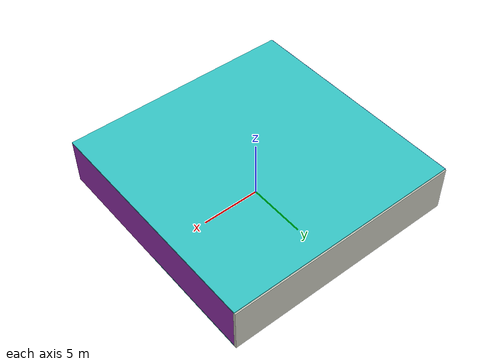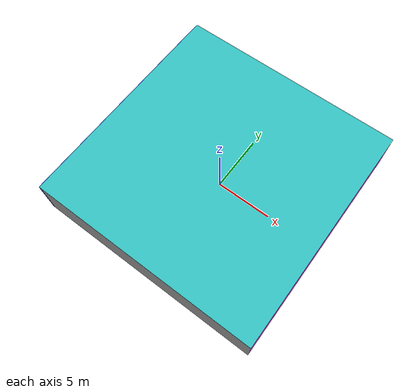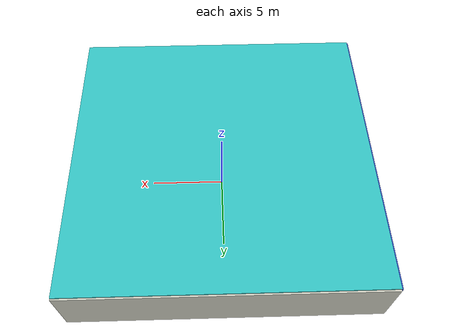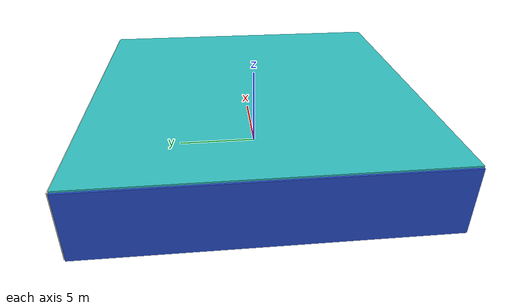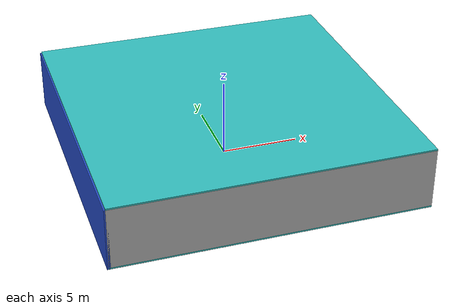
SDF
<sdf version="1.4">
 <world name="default">
  <physics type="ode">
   <max_step_size>0.001</max_step_size>
   <real_time_factor>1</real_time_factor>
   <real_time_update_rate>1000</real_time_update_rate>
   <gravity>0 0 -9.8</gravity>
  </physics>
  <scene><ambient>0.4 0.4 0.4 1</ambient><background>0.7 0.7 0.7 1</background><shadows>1</shadows></scene>
  <model name="Surrounding">
   <static>1</static>
   <link name="Ceiling">
    <collision name="Ceiling_Collision"><geometry><box><size>20 20 0.1</size></box></geometry></collision>
    <visual name="Ceiling_Visual">
     <geometry><box><size>20 20 0.1</size></box></geometry>
     <material>
      <script><uri>file://media/materials/scripts/gazebo.material</uri><name>Gazebo/TurquoiseGlow</name></script>
     </material>
    </visual>
    <pose>0 0 4.05 0 0 0</pose>
   </link>
   <link name="Wall_South">
    <collision name="Wall_South_Collision">
     <geometry><box><size>20 0 4</size></box></geometry>
     <pose>0 0 2 0 -0 0</pose>
    </collision>
    <visual name="Wall_South_Visual">
     <pose>0 0 2 0 -0 0</pose>
     <geometry><box><size>20 0 4</size></box></geometry>
     <material>
      <script><uri>file://media/materials/scripts/gazebo.material</uri><name>Gazebo/CloudySky</name></script>
     </material>
    </visual>
    <velocity_decay><linear>0</linear><angular>0</angular></velocity_decay>
    <pose>0 -10 0 0 -0 0</pose>
   </link>
   <link name="Wall_East">
    <collision name="Wall_21_Collision">
     <geometry><box><size>20 0 4</size></box></geometry>
     <pose>0 0 2 0 -0 0</pose>
    </collision>
    <visual name="Wall_21_Visual">
     <pose>0 0 2 0 -0 0</pose>
     <geometry><box><size>20 0 4</size></box></geometry>
     <material>
      <script><uri>file://media/materials/scripts/gazebo.material</uri><name>Gazebo/PurpleGlow</name></script>
     </material>
    </visual>
    <velocity_decay><linear>0</linear><angular>0</angular></velocity_decay>
    <pose>10 0 0 0 -0 1.5708</pose>
   </link>
   <link name="Wall_North">
    <collision name="Wall_22_Collision">
     <geometry><box><size>20 0.2 4</size></box></geometry>
     <pose>0 0 2 0 -0 0</pose>
    </collision>
    <visual name="Wall_22_Visual">
     <pose>0 0 2 0 -0 0</pose>
     <geometry><box><size>20 0.2 4</size></box></geometry>
     <material>
      <script><uri>file://media/materials/scripts/gazebo.material</uri><name>Gazebo/PaintedWall</name></script>
     </material>
    </visual>
    <velocity_decay><linear>0</linear><angular>0</angular></velocity_decay>
    <pose>0 10 0 0 -0 0</pose>
   </link>
   <link name="Wall_West">
    <collision name="Wall_23_Collision">
     <geometry><box><size>20 0.2 4</size></box></geometry>
     <pose>0 0 2 0 -0 0</pose>
    </collision>
    <visual name="Wall_23_Visual">
     <pose>0 0 2 0 -0 0</pose>
     <geometry><box><size>20 0.2 4</size></box></geometry>
     <material>
      <script><uri>file://media/materials/scripts/gazebo.material</uri><name>Gazebo/BlueLaser</name></script>
     </material>
    </visual>
    <velocity_decay><linear>0</linear><angular>0</angular></velocity_decay>
    <pose>-10 0 0 0 0 -1.5708</pose>
   </link>
   <link name="Ground_link">
    <collision name="collision">
     <pose>0 0 .05 0 -0 0</pose>
     <geometry><box><size>20 20 0.1</size></box></geometry>
    </collision>
    <visual name="visual">
     <pose>0 0 .05 0 -0 0</pose>
     <geometry><box><size>20 20 0.1</size></box></geometry>
     <material>
      <script>
       <uri>file://media/materials/scripts/gazebo.material</uri>
       <name>Gazebo/TurquoiseGlowOutline</name>
      </script>
     </material>
    </visual>
   </link>
   <static>1</static>
  </model>
  <spherical_coordinates>
   <surface_model>EARTH_WGS84</surface_model>
   <latitude_deg>0</latitude_deg>
   <longitude_deg>0</longitude_deg>
   <elevation>0</elevation>
   <heading_deg>0</heading_deg>
  </spherical_coordinates>
  <light name="lightball_0" type="diffuse">
   <diffuse>0.8 0.8 0.8 1</diffuse>
   <specular>0.2 0.2 0.2 1</specular>
   <attenuation>
    <range>100</range>
    <constant>0.7</constant>
    <linear>0.01</linear>
    <quadratic>0.001</quadratic>
   </attenuation>
   <direction>-0.5 0.1 -0.9</direction>
   <pose>7.16718013524 8.06002557778 1.12140322868 0 0 0</pose>
  </light>
  <light name="lightball_1" type="diffuse">
   <diffuse>0.8 0.8 0.8 1</diffuse>
   <specular>0.2 0.2 0.2 1</specular>
   <attenuation>
    <range>100</range>
    <constant>0.7</constant>
    <linear>0.01</linear>
    <quadratic>0.001</quadratic>
   </attenuation>
   <direction>-0.5 0.1 -0.9</direction>
   <pose>9.93768468176 -4.15626036948 3.7618790837 0 0 0</pose>
  </light>
  <light name="lightball_2" type="diffuse">
   <diffuse>0.8 0.8 0.8 1</diffuse>
   <specular>0.2 0.2 0.2 1</specular>
   <attenuation>
    <range>100</range>
    <constant>0.7</constant>
    <linear>0.01</linear>
    <quadratic>0.001</quadratic>
   </attenuation>
   <direction>-0.5 0.1 -0.9</direction>
   <pose>2.83906281686 -2.41080746767 1.9078589274 0 0 0</pose>
  </light>
  <include>
   <uri>model://textured_shapes</uri>
   <pose>-7.83047295919 0.814641136761 0 0 0 0.0973254717475</pose>
  </include>
  <include><uri>model://cabinet</uri><pose>-7.82900796453 5.2646680817 0 0 0 1.5317597321</pose></include>
  <include><uri>model://cabinet</uri><pose>-4.51112523367 4.70407594127 0 0 0 0.991407152907</pose></include>
  <include><uri>model://cabinet</uri><pose>1.87409377474 7.27141639019 0 0 0 0.00983831727677</pose></include>
  <include>
   <uri>model://textured_shapes</uri>
   <pose>5.53833015242 -4.3305643285 0 0 0 0.160471185427</pose>
  </include>
  <include><uri>model://cabinet</uri><pose>4.64338970937 -1.18494107723 0 0 0 2.45500331268</pose></include>
  <include>
   <uri>model://textured_shapes</uri>
   <pose>5.01841495573 0.443583472502 0 0 0 1.1163278355</pose>
  </include>
  <include><uri>model://cabinet</uri><pose>7.37077349689 -7.95947778361 0 0 0 2.82827063289</pose></include>
 </world>
</sdf>

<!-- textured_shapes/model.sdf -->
<sdf version="1.6">
  <model name="textured_shapes">
    <pose>0 0 0.5 0 0 0</pose>
    <link name="box">
      <pose>0 -1.5 0 0 0 0</pose>
      <collision name="collision">
        <geometry>
          <box>
            <size>1 1 1</size>
          </box>
        </geometry>
      </collision>
      <visual name="visual">
        <geometry>
          <box>
            <size>1 1 1</size>
          </box>
        </geometry>
        <material>
          <script>
            <uri>model://../model_source/models/textured_shapes/materials/scripts</uri>
            <uri>model://../model_source/models/textured_shapes/materials/textures</uri>
            <name>TexturedShape/Squares</name>
          </script>
        </material>
      </visual>
    </link>
    <link name="sphere">
      <collision name="collision">
        <geometry>
          <sphere>
            <radius>0.5</radius>
          </sphere>
        </geometry>
      </collision>
      <visual name="visual">
        <geometry>
          <sphere>
            <radius>0.5</radius>
          </sphere>
        </geometry>
        <material>
          <script>
            <uri>model://../model_source/models/textured_shapes/materials/scripts</uri>
            <uri>model://../model_source/models/textured_shapes/materials/textures</uri>
            <name>TexturedShape/Squares</name>
          </script>
        </material>
      </visual>
    </link>
    <link name="cylinder">
      <pose>0 1.5 0 0 0 0</pose>
      <collision name="collision">
        <geometry>
          <cylinder>
            <radius>0.5</radius>
            <length>1</length>
          </cylinder>
        </geometry>
      </collision>
      <visual name="visual">
        <geometry>
          <cylinder>
            <radius>0.5</radius>
            <length>1</length>
          </cylinder>
        </geometry>
        <material>
          <script>
            <uri>model://../model_source/models/textured_shapes/materials/scripts</uri>
            <uri>model://../model_source/models/textured_shapes/materials/textures</uri>
            <name>TexturedShape/Squares</name>
          </script>
        </material>
      </visual>
    </link>
  </model>
</sdf>

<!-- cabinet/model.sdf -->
<sdf version="1.5">
  <model name="cabinet">
    <static>true</static>
    <link name="cabinet_bottom_plate">
      <inertial>
        <pose>0 0 -1 0 0 0</pose>
        <inertia>
          <ixx>2.050000</ixx>
          <ixy>0</ixy>
          <ixz>0</ixz>
          <iyy>2.050000</iyy>
          <iyz>0</iyz>
          <izz>2.050000</izz>
        </inertia>
        <mass>25.000000</mass>
      </inertial>
      <collision name="cabinet_bottom_plate_geom">
        <pose>0 0 0.010000 0 0 0</pose>
        <geometry>
          <box>
            <size>0.450000 0.450000 0.020000</size>
          </box>
        </geometry>
      </collision>
      <visual name="cabinet_bottom_plate_geom_visual">
        <pose>0 0 0.010000 0 0 0</pose>
        <geometry>
          <box>
            <size>0.450000 0.450000 0.020000</size>
          </box>
        </geometry>
        <material>
          <script>
            <uri>model://media/materials/scripts/gazebo.material</uri>
            <name>Gazebo/Wood</name>
          </script>
        </material>
      </visual>
      <collision name="cabinet_bottom_plate_geom_cabinet_back_plate">
        <pose>0.235000 0 0.510000 0 0 0</pose>
        <geometry>
          <box>
            <size>0.020000 0.450000 1.020000</size>
          </box>
        </geometry>
      </collision>
      <visual name="cabinet_bottom_plate_geom_cabinet_back_plate_visual">
        <pose>0.235000 0 0.510000 0 0 0</pose>
        <geometry>
          <box>
            <size>0.020000 0.450000 1.020000</size>
          </box>
        </geometry>
        <material>
          <script>
            <uri>model://media/materials/scripts/gazebo.material</uri>
            <name>Gazebo/Wood</name>
          </script>
        </material>
      </visual>
      <collision name="cabinet_bottom_plate_geom_cabinet_left_plate">
        <pose>0 0.235000 0.510000 0 0 0</pose>
        <geometry>
          <box>
            <size>0.450000 0.020000 1.020000</size>
          </box>
        </geometry>
      </collision>
      <visual name="cabinet_bottom_plate_geom_cabinet_left_plate_visual">
        <pose>0 0.235000 0.510000 0 0 0</pose>
        <geometry>
          <box>
            <size>0.450000 0.020000 1.020000</size>
          </box>
        </geometry>
        <material>
          <script>
            <uri>model://media/materials/scripts/gazebo.material</uri>
            <name>Gazebo/Wood</name>
          </script>
        </material>
      </visual>
      <collision name="cabinet_bottom_plate_geom_cabinet_middle_plate">
        <pose>0 0 0.510000 0 0 0</pose>
        <geometry>
          <box>
            <size>0.450000 0.450000 0.020000</size>
          </box>
        </geometry>
      </collision>
      <visual name="cabinet_bottom_plate_geom_cabinet_middle_plate_visual">
        <pose>0 0 0.510000 0 0 0</pose>
        <geometry>
          <box>
            <size>0.450000 0.450000 0.020000</size>
          </box>
        </geometry>
        <material>
          <script>
            <uri>model://media/materials/scripts/gazebo.material</uri>
            <name>Gazebo/Wood</name>
          </script>
        </material>
      </visual>
      <collision name="cabinet_bottom_plate_geom_cabinet_right_plate">
        <pose>0 -0.235000 0.510000 0 0 0</pose>
        <geometry>
          <box>
            <size>0.450000 0.020000 1.020000</size>
          </box>
        </geometry>
      </collision>
      <visual name="cabinet_bottom_plate_geom_cabinet_right_plate_visual">
        <pose>0 -0.235000 0.510000 0 0 0</pose>
        <geometry>
          <box>
            <size>0.450000 0.020000 1.020000</size>
          </box>
        </geometry>
        <material>
          <script>
            <uri>model://media/materials/scripts/gazebo.material</uri>
            <name>Gazebo/Wood</name>
          </script>
        </material>
      </visual>
      <collision name="cabinet_bottom_plate_geom_cabinet_top_plate">
        <pose>0 0 1.010000 0 0 0</pose>
        <geometry>
          <box>
            <size>0.450000 0.450000 0.020000</size>
          </box>
        </geometry>
      </collision>
      <visual name="cabinet_bottom_plate_geom_cabinet_top_plate_visual">
        <pose>0 0 1.010000 0 0 0</pose>
        <geometry>
          <box>
            <size>0.450000 0.450000 0.020000</size>
          </box>
        </geometry>
        <material>
          <script>
            <uri>model://media/materials/scripts/gazebo.material</uri>
            <name>Gazebo/Wood</name>
          </script>
        </material>
      </visual>
    </link>
  </model>
</sdf>
